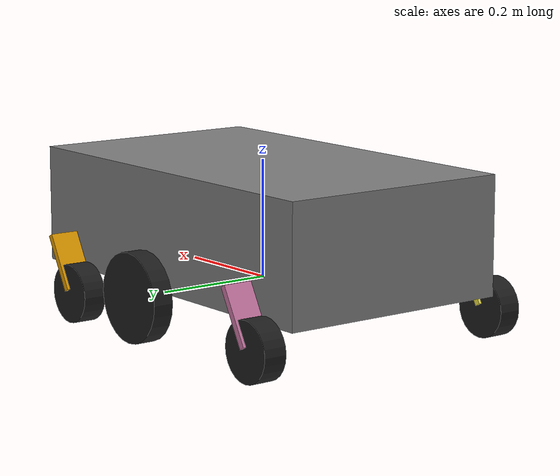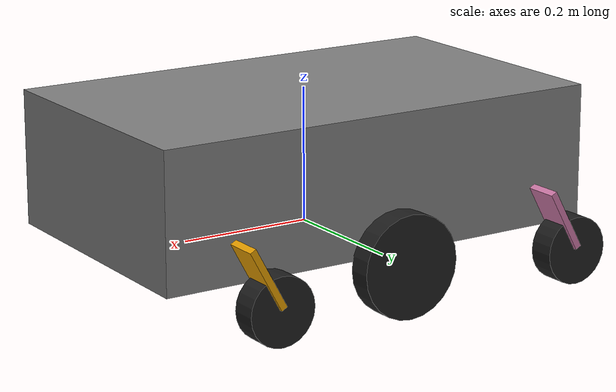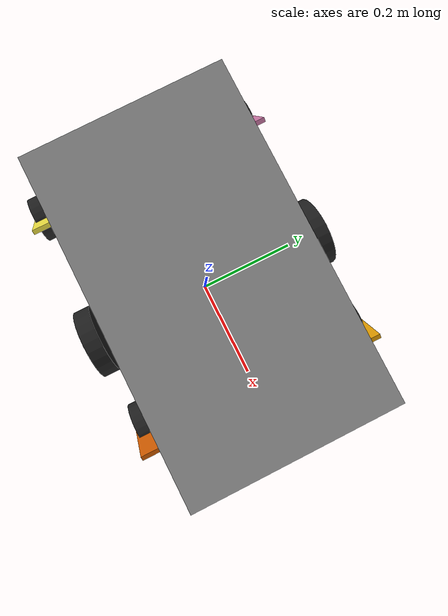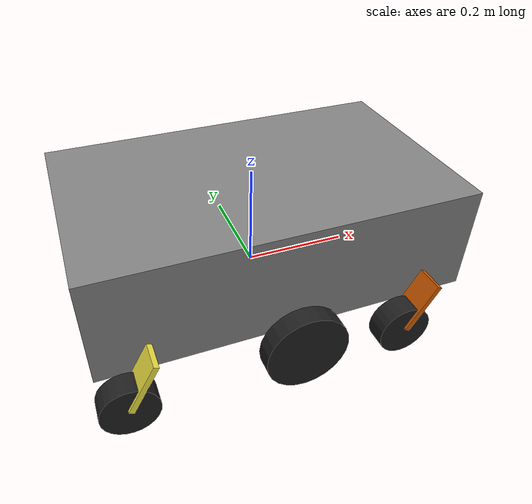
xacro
<?xml version="1.0"?>
<!--robot name="whill" xmlns:xacro="http://ros.org/wiki/xacro"-->

<robot name="agv_evaluation" xmlns:xacro="http://ros.org/wiki/xacro">
  <xacro:include filename="$(find agv_eval_description)/sample2/base/base.urdf.xacro"/>
  <xacro:include filename="$(find agv_eval_description)/sample2/wheel/wheel.urdf.xacro"/>
  <xacro:include filename="$(find agv_eval_description)/sample2/caster/caster.urdf.xacro"/>
  <xacro:include filename="$(find agv_eval_description)/urdf/common.xacro"/>

  <xacro:property name="wheel_tread" value="0.507"/>
  <xacro:property name="caster_tread" value="0.480"/>

  <!-- =============== Link & Joint =============== -->
  <!-- Base -->
  <link name="base_link"/>

  <xacro:base_v0 parent="base_link"/>

  <!-- Wheel -->
  <!-- Right Wheel -->
  <xacro:wheel_v0 prefix="right" parent="base_link">
    <origin xyz="0 -${wheel_tread/2} 0.0"/>
    <axis xyz="0 1 0"/>
  </xacro:wheel_v0>
  <!-- Left Wheel -->
  <xacro:wheel_v0 prefix="left" parent="base_link">
    <origin xyz="0 ${wheel_tread/2} 0" rpy="0 0 ${M_PI}"/>
    <axis xyz="0 -1 0"/>
  </xacro:wheel_v0>

  <!-- Caster -->
  <!-- Front Right Caster-->
  <xacro:caster_v0 prefix="fr" parent="base_link">
    <origin xyz="0.25 -${caster_tread/2} 0.07" rpy="0 0 0"/>
  </xacro:caster_v0>

  <!-- Front Left Caster-->
  <xacro:caster_v0 prefix="fl" parent="base_link">
    <origin xyz="0.25 ${caster_tread/2} 0.07" rpy="0 0 0"/>
  </xacro:caster_v0>

  <!-- Rear Right Caster-->
  <xacro:caster_v0 prefix="rr" parent="base_link">
    <origin xyz="-0.25 -${caster_tread/2} 0.07" rpy="0 0 0"/>
  </xacro:caster_v0>

  <!-- Rear Left Caster-->
  <xacro:caster_v0 prefix="rl" parent="base_link">
    <origin xyz="-0.25 ${caster_tread/2} 0.07" rpy="0 0 0"/>
  </xacro:caster_v0>

  <!-- ===============  Transmission =============== -->
  <xacro:wheel_trans_v0 prefix="right"/>
  <xacro:wheel_trans_v0 prefix="left"/>
  <!-- =============== Gazebo =============== -->
  <gazebo>
    <plugin name="gazebo_ros_control" filename="libgazebo_ros_control.so">
      <robotNamespace>/agv_eval_description</robotNamespace>
      <robotSimType>gazebo_ros_control/DefaultRobotHWSim</robotSimType>
      <legacyModeNS>true</legacyModeNS>
    </plugin>
  </gazebo>

  <!-- Wheel -->
  <xacro:wheel_gazebo_v0 prefix="right"/>
  <xacro:wheel_gazebo_v0 prefix="left"/>

  <!-- Caster -->
  <xacro:caster_gazebo_v0 prefix="fr"/>
  <xacro:caster_gazebo_v0 prefix="fl"/>
  <xacro:caster_gazebo_v0 prefix="rr"/>
  <xacro:caster_gazebo_v0 prefix="rl"/>

</robot>

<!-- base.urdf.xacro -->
<robot xmlns:xacro="http://ros.org/wiki/xacro">
  <xacro:include filename="$(find agv_eval_description)/urdf/common.xacro"/>

  <xacro:macro name="base_v0" params="parent">
    <joint name="base_link_joint" type="fixed">
      <origin xyz="0 0 0"/>
      <parent link="${parent}"/>
      <child link="base_axle"/>
    </joint>

    <link name="base_axle">
      <visual>
    	<origin xyz="0 0 0.1" rpy="0 0 0" />
        <geometry>
          <box size="0.69 0.41 0.2"/>
        </geometry>
        <material name="">
          <color rgba="0.5 0.5 0.5 1" />
        </material>
      </visual>
      <collision>
      	<origin xyz="0 0 0.1" rpy="0 0 0" />
        <geometry>
          <box size="0.69 0.41 0.2"/>
        </geometry>
      </collision>
      <inertial>
        <origin xyz="0 0 0.05"/>
        <xacro:box_inertial mass="45" height="0.69" width="0.51" depth="0.10"/>
      </inertial>
    </link>
  </xacro:macro>

  <xacro:macro name="base_gazebo_v0">
    <gazebo reference="base_axle">
      <selfCollide>false</selfCollide>
      <mu1 value="0.05"/>
      <mu2 value="0.05"/>
    </gazebo>
  </xacro:macro>

</robot>

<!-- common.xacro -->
<robot xmlns:xacro="http://ros.org/wiki/xacro">
  <xacro:property name="M_PI" value="3.14159274"/>

  <xacro:macro name="cylinder_inertial" params="mass radius length">
    <mass value="${mass}"/>
    <inertia ixx="${((radius*radius)/4 + (length*length)/12)*mass}" ixy="0" ixz="0" iyy="${((radius*radius)/4 + (length*length)/12)*mass}" iyz="0" izz="${(mass*radius*radius)/2}"/>
  </xacro:macro>

  <xacro:macro name="box_inertial" params="mass height width depth">
    <mass value="${mass}"/>
    <inertia ixx="${(mass*(width*width+depth*depth))/12}" ixy="0" ixz="0" iyy="${(mass*(height*height+depth*depth))/12}" iyz="0" izz="${(mass*(height*height+width*width))/12}"/>
  </xacro:macro>
</robot>

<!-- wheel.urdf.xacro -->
<robot xmlns:xacro="http://ros.org/wiki/xacro">

  <xacro:include filename="$(find agv_eval_description)/urdf/common.xacro"/>

  <xacro:property name="wheel_radius" value="${0.150/2}"/>
  <xacro:property name="wheel_length" value="0.035"/>
  <xacro:property name="wheel_mass" value="0.5"/>

  <xacro:macro name="wheel_v0" params="prefix parent *joint_origin *joint_axis">
    <joint name="${prefix}_wheel_joint" type="continuous">
      <xacro:insert_block name="joint_origin"/>
      <parent link="${parent}"/>
      <child link="${prefix}_wheel_link"/>
      <xacro:insert_block name="joint_axis"/>
      <dynamics damping="0.05"/>
    </joint>

    <link name="${prefix}_wheel_link">
      <visual>
        <origin xyz="0 0 0" rpy="${-M_PI/2} 0 0"/>
        <geometry>
          <cylinder radius="${wheel_radius}" length="${wheel_length}"/>
        </geometry>
      </visual>
      <collision>
        <origin xyz="0 0 0" rpy="${-M_PI/2} 0 0"/>
        <geometry>
          <cylinder radius="${wheel_radius}" length="${wheel_length}"/>
        </geometry>
      </collision>
      <inertial>
        <origin xyz="0 0 0" rpy="${-M_PI/2} 0 0"/>
        <xacro:cylinder_inertial mass="${wheel_mass}" radius="${wheel_radius}" length="${wheel_length}"/>
      </inertial>
    </link>
  </xacro:macro>

  <xacro:macro name="wheel_gazebo_v0" params="prefix">
    <gazebo reference="${prefix}_wheel_link">
      <selfCollide>false</selfCollide>
      <mu1 value="2.5" />
      <mu2 value="2.5" />
      <kp value="1e7" />
      <kd value="1" />
      <!--fdir1 value="1 0 0"/-->
      <material>Gazebo/Black</material>
    </gazebo>
  </xacro:macro>

  <xacro:macro name="wheel_trans_v0" params="prefix">
	<transmission name="${prefix}_wheel_trans">
      <type>transmission_interface/SimpleTransmission</type>
      <joint name="${prefix}_wheel_joint">
		<hardwareInterface>hardware_interface/VelocityJointInterface</hardwareInterface>
      </joint>
	  <actuator name="${prefix}_wheel_motor">
		<hardwareInterface>hardware_interface/VelocityJointInterface</hardwareInterface>
		<mechanicalReduction>30</mechanicalReduction>
      </actuator>
	</transmission>
  </xacro:macro>

</robot>

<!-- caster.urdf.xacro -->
<robot xmlns:xacro="http://ros.org/wiki/xacro">

  <xacro:include filename="$(find agv_eval_description)/urdf/common.xacro"/>

  <xacro:property name="caster_radius" value="${0.10/2}"/>
  <xacro:property name="caster_length" value="0.04"/>
  <xacro:property name="caster_mass" value="0.5"/>

  <xacro:macro name="caster_v0" params="prefix parent *joint_origin">
    <joint name="${prefix}_swing_joing" type="continuous">
      <xacro:insert_block name="joint_origin"/>
      <parent link="${parent}"/>
      <child link="${prefix}_swing_link"/>
      <axis xyz="0 0 1"/>
    </joint>
    <link name="${prefix}_swing_link">
      <inertial>
        <origin xyz="0 0 0" rpy="0 0 0"/>
        <xacro:box_inertial mass="0.2" height="0.1" width="0.05" depth="0.05"/>
      </inertial>
    </link>

    <joint name="${prefix}_sus_joint" type="revolute">
      <origin xyz="0 0 0" rpy="0 0 0"/>
      <parent link="${prefix}_swing_link"/>
      <child link="${prefix}_sus_link"/>
      <axis xyz="0 1 0"/>
      <limit lower="0.0" upper="0.5" effort="0" velocity="0"/>
      <dynamics damping="0.7"/>
    </joint>
    <link name="${prefix}_sus_link">
      <visual>
        <origin xyz="-0.025 0 -0.05" rpy="0 0.5 0"/>
        <geometry>
          <box size="0.01 0.05 0.1"/>
        </geometry>
      </visual>
      <collision>
        <origin xyz="-0.025 0 -0.05" rpy="0 0.5 0"/>
        <geometry>
          <box size="0.01 0.05 0.1"/>
        </geometry>
      </collision>
      <inertial>
        <origin xyz="0 0 0" rpy="0 0 0"/>
        <xacro:box_inertial mass="0.2" height="0.1" width="0.05" depth="0.05"/>
      </inertial>
    </link>

    <gazebo reference="${prefix}_sus_joint">
      <implicitSpringDamper>true</implicitSpringDamper>
      <springStiffness>45</springStiffness>
      <springReference>0.0</springReference>
    </gazebo>

    <joint name="${prefix}_caster_joint" type="continuous">
      <origin xyz="-0.05 0 -0.1" rpy="0 0 0"/>
      <parent link="${prefix}_sus_link"/>
      <child link="${prefix}_caster_link"/>
      <axis xyz="0 -1 0"/>
      <dynamics damping="0.01"/>
    </joint>

    <link name="${prefix}_caster_link">
      <visual>
        <origin xyz="0 0 0" rpy="${-M_PI/2} 0 0"/>
        <geometry>
          <cylinder radius="${caster_radius}" length="${caster_length}"/>
        </geometry>
      </visual>
      <collision>
        <origin xyz="0 0 0" rpy="${-M_PI/2} 0 0"/>
        <geometry>
          <cylinder radius="${caster_radius}" length="${caster_length}"/>
        </geometry>
      </collision>
      <inertial>
        <origin xyz="0 0 0" rpy="${-M_PI/2} 0 0"/>
        <xacro:cylinder_inertial mass="${caster_mass}" radius="${caster_radius}" length="${caster_length}"/>
      </inertial>
    </link>
  </xacro:macro>

  <xacro:macro name="caster_gazebo_v0" params="prefix">
    <gazebo reference="${prefix}_caster_link">
      <selfCollide>false</selfCollide>
      <mu1 value="2.5" />
      <mu2 value="2.5" />
      <kp value="1e7" />
      <kd value="1" />
      <!--fdir1 value="1 0 0"/-->
      <material>Gazebo/Black</material>
    </gazebo>
  </xacro:macro>

</robot>
